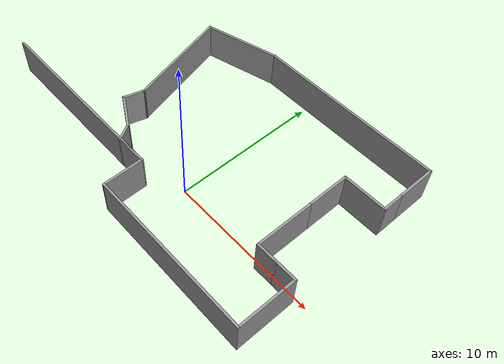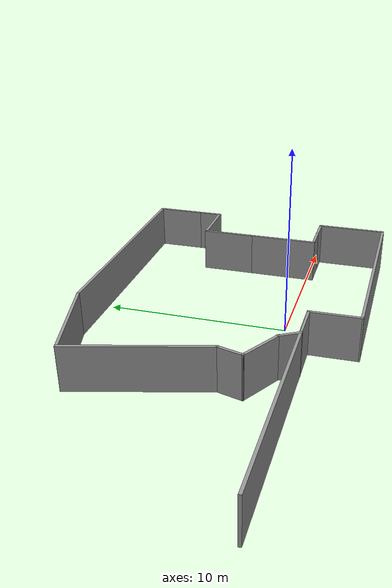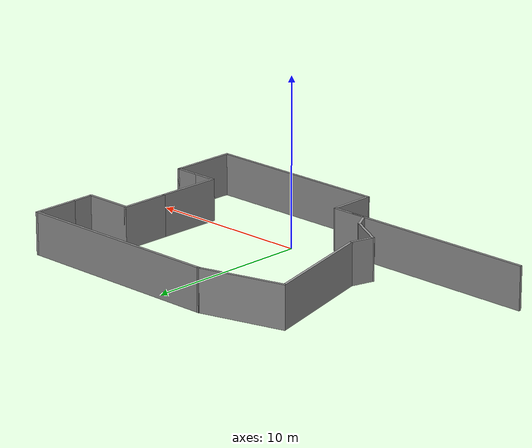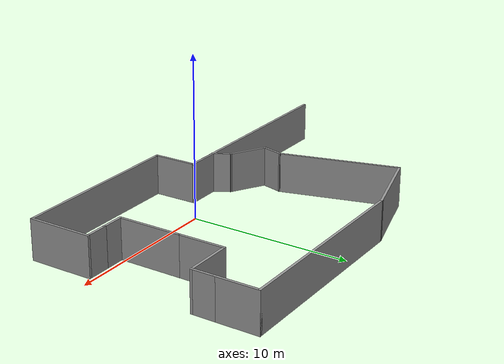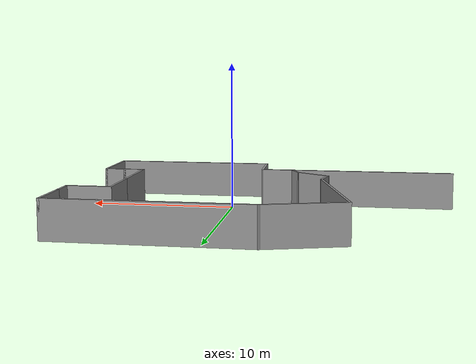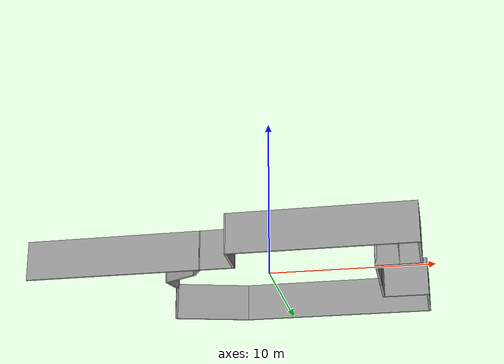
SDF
<?xml version='1.0'?>
<sdf version='1.7'>
  <model name='Untitled'>
    <pose>-2.84593 3.10905 0 0 -0 0</pose>
    <link name='Wall_1'>
      <collision name='Wall_1_Collision'>
        <geometry>
          <box>
            <size>2.25 0.15 2.5</size>
          </box>
        </geometry>
        <pose>0 0 1.25 0 -0 0</pose>
      </collision>
      <visual name='Wall_1_Visual'>
        <pose>0 0 1.25 0 -0 0</pose>
        <geometry>
          <box>
            <size>2.25 0.15 2.5</size>
          </box>
        </geometry>
        <material>
          <script>
            <uri>file://media/materials/scripts/gazebo.material</uri>
            <name>Gazebo/Grey</name>
          </script>
          <ambient>1 1 1 1</ambient>
        </material>
        <meta>
          <layer>0</layer>
        </meta>
      </visual>
      <pose>-0.144074 -4.60905 0 0 -0 3.14159</pose>
    </link>
    <link name='Wall_10'>
      <collision name='Wall_10_Collision'>
        <geometry>
          <box>
            <size>3 0.15 2.5</size>
          </box>
        </geometry>
        <pose>0 0 1.25 0 -0 0</pose>
      </collision>
      <visual name='Wall_10_Visual'>
        <pose>0 0 1.25 0 -0 0</pose>
        <geometry>
          <box>
            <size>3 0.15 2.5</size>
          </box>
        </geometry>
        <material>
          <script>
            <uri>file://media/materials/scripts/gazebo.material</uri>
            <name>Gazebo/Grey</name>
          </script>
          <ambient>1 1 1 1</ambient>
        </material>
        <meta>
          <layer>0</layer>
        </meta>
      </visual>
      <pose>10.7691 3.29211 0 0 -0 3.14159</pose>
    </link>
    <link name='Wall_11'>
      <collision name='Wall_11_Collision'>
        <geometry>
          <box>
            <size>3 0.15 2.5</size>
          </box>
        </geometry>
        <pose>0 0 1.25 0 -0 0</pose>
      </collision>
      <visual name='Wall_11_Visual'>
        <pose>0 0 1.25 0 -0 0</pose>
        <geometry>
          <box>
            <size>3 0.15 2.5</size>
          </box>
        </geometry>
        <material>
          <script>
            <uri>file://media/materials/scripts/gazebo.material</uri>
            <name>Gazebo/Grey</name>
          </script>
          <ambient>1 1 1 1</ambient>
        </material>
        <meta>
          <layer>0</layer>
        </meta>
      </visual>
      <pose>9.34407 1.86711 0 0 -0 -1.5708</pose>
    </link>
    <link name='Wall_12'>
      <collision name='Wall_12_Collision'>
        <geometry>
          <box>
            <size>4 0.15 2.5</size>
          </box>
        </geometry>
        <pose>0 0 1.25 0 -0 0</pose>
      </collision>
      <visual name='Wall_12_Visual'>
        <pose>0 0 1.25 0 -0 0</pose>
        <geometry>
          <box>
            <size>4 0.15 2.5</size>
          </box>
        </geometry>
        <material>
          <script>
            <uri>file://media/materials/scripts/gazebo.material</uri>
            <name>Gazebo/Grey</name>
          </script>
          <ambient>1 1 1 1</ambient>
        </material>
        <meta>
          <layer>0</layer>
        </meta>
      </visual>
      <pose>9.34407 -1.48289 0 0 -0 -1.5708</pose>
    </link>
    <link name='Wall_13'>
      <collision name='Wall_13_Collision'>
        <geometry>
          <box>
            <size>1.5 0.15 2.5</size>
          </box>
        </geometry>
        <pose>0 0 1.25 0 -0 0</pose>
      </collision>
      <visual name='Wall_13_Visual'>
        <pose>0 0 1.25 0 -0 0</pose>
        <geometry>
          <box>
            <size>1.5 0.15 2.5</size>
          </box>
        </geometry>
        <material>
          <script>
            <uri>file://media/materials/scripts/gazebo.material</uri>
            <name>Gazebo/Grey</name>
          </script>
          <ambient>1 1 1 1</ambient>
        </material>
        <meta>
          <layer>0</layer>
        </meta>
      </visual>
      <pose>10.0191 -3.40789 0 0 -0 0</pose>
    </link>
    <link name='Wall_14'>
      <collision name='Wall_14_Collision'>
        <geometry>
          <box>
            <size>1.5 0.15 2.5</size>
          </box>
        </geometry>
        <pose>0 0 1.25 0 -0 0</pose>
      </collision>
      <visual name='Wall_14_Visual'>
        <pose>0 0 1.25 0 -0 0</pose>
        <geometry>
          <box>
            <size>1.5 0.15 2.5</size>
          </box>
        </geometry>
        <material>
          <script>
            <uri>file://media/materials/scripts/gazebo.material</uri>
            <name>Gazebo/Grey</name>
          </script>
          <ambient>1 1 1 1</ambient>
        </material>
        <meta>
          <layer>0</layer>
        </meta>
      </visual>
      <pose>11.3691 -3.40789 0 0 -0 0</pose>
    </link>
    <link name='Wall_15'>
      <collision name='Wall_15_Collision'>
        <geometry>
          <box>
            <size>4 0.15 2.5</size>
          </box>
        </geometry>
        <pose>0 0 1.25 0 -0 0</pose>
      </collision>
      <visual name='Wall_15_Visual'>
        <pose>0 0 1.25 0 -0 0</pose>
        <geometry>
          <box>
            <size>4 0.15 2.5</size>
          </box>
        </geometry>
        <material>
          <script>
            <uri>file://media/materials/scripts/gazebo.material</uri>
            <name>Gazebo/Grey</name>
          </script>
          <ambient>1 1 1 1</ambient>
        </material>
        <meta>
          <layer>0</layer>
        </meta>
      </visual>
      <pose>12.0441 -5.33289 0 0 -0 -1.5708</pose>
    </link>
    <link name='Wall_16'>
      <collision name='Wall_16_Collision'>
        <geometry>
          <box>
            <size>11.25 0.15 2.5</size>
          </box>
        </geometry>
        <pose>0 0 1.25 0 -0 0</pose>
      </collision>
      <visual name='Wall_16_Visual'>
        <pose>0 0 1.25 0 -0 0</pose>
        <geometry>
          <box>
            <size>11.25 0.15 2.5</size>
          </box>
        </geometry>
        <material>
          <script>
            <uri>file://media/materials/scripts/gazebo.material</uri>
            <name>Gazebo/Grey</name>
          </script>
          <ambient>1 1 1 1</ambient>
        </material>
        <meta>
          <layer>0</layer>
        </meta>
      </visual>
      <pose>6.49407 -7.25789 0 0 -0 3.14159</pose>
    </link>
    <link name='Wall_17'>
      <collision name='Wall_17_Collision'>
        <geometry>
          <box>
            <size>2.79912 0.15 2.5</size>
          </box>
        </geometry>
        <pose>0 0 1.25 0 -0 0</pose>
      </collision>
      <visual name='Wall_17_Visual'>
        <pose>0 0 1.25 0 -0 0</pose>
        <geometry>
          <box>
            <size>2.79912 0.15 2.5</size>
          </box>
        </geometry>
        <material>
          <script>
            <uri>file://media/materials/scripts/gazebo.material</uri>
            <name>Gazebo/Grey</name>
          </script>
          <ambient>1 1 1 1</ambient>
        </material>
        <meta>
          <layer>0</layer>
        </meta>
      </visual>
      <pose>0.925 -5.93347 0 0 -0 1.5852</pose>
    </link>
    <link name='Wall_18'>
      <collision name='Wall_18_Collision'>
        <geometry>
          <box>
            <size>13.25 0.15 2.5</size>
          </box>
        </geometry>
        <pose>0 0 1.25 0 -0 0</pose>
      </collision>
      <visual name='Wall_18_Visual'>
        <pose>0 0 1.25 0 -0 0</pose>
        <geometry>
          <box>
            <size>13.25 0.15 2.5</size>
          </box>
        </geometry>
        <material>
          <script>
            <uri>file://media/materials/scripts/gazebo.material</uri>
            <name>Gazebo/Grey</name>
          </script>
          <ambient>0 0 0 1</ambient>
        </material>
        <meta>
          <layer>0</layer>
        </meta>
      </visual>
      <pose>-5.64407 -4.60905 0 0 -0 3.14159</pose>
    </link>
    <link name='Wall_2'>
      <collision name='Wall_2_Collision'>
        <geometry>
          <box>
            <size>1.25 0.15 2.5</size>
          </box>
        </geometry>
        <pose>0 0 1.25 0 -0 0</pose>
      </collision>
      <visual name='Wall_2_Visual'>
        <pose>0 0 1.25 0 -0 0</pose>
        <geometry>
          <box>
            <size>1.25 0.15 2.5</size>
          </box>
        </geometry>
        <material>
          <script>
            <uri>file://media/materials/scripts/gazebo.material</uri>
            <name>Gazebo/Grey</name>
          </script>
          <ambient>1 1 1 1</ambient>
        </material>
        <meta>
          <layer>0</layer>
        </meta>
      </visual>
      <pose>-1.46907 -4.13274 0 0 -0 2.0944</pose>
    </link>
    <link name='Wall_3'>
      <collision name='Wall_3_Collision'>
        <geometry>
          <box>
            <size>2.5 0.15 2.5</size>
          </box>
        </geometry>
        <pose>0 0 1.25 0 -0 0</pose>
      </collision>
      <visual name='Wall_3_Visual'>
        <pose>0 0 1.25 0 -0 0</pose>
        <geometry>
          <box>
            <size>2.5 0.15 2.5</size>
          </box>
        </geometry>
        <material>
          <script>
            <uri>file://media/materials/scripts/gazebo.material</uri>
            <name>Gazebo/Grey</name>
          </script>
          <ambient>1 1 1 1</ambient>
        </material>
        <meta>
          <layer>0</layer>
        </meta>
      </visual>
      <pose>-2.76165 -3.06892 0 0 -0 2.61799</pose>
    </link>
    <link name='Wall_4'>
      <collision name='Wall_4_Collision'>
        <geometry>
          <box>
            <size>1.5 0.15 2.5</size>
          </box>
        </geometry>
        <pose>0 0 1.25 0 -0 0</pose>
      </collision>
      <visual name='Wall_4_Visual'>
        <pose>0 0 1.25 0 -0 0</pose>
        <geometry>
          <box>
            <size>1.5 0.15 2.5</size>
          </box>
        </geometry>
        <material>
          <script>
            <uri>file://media/materials/scripts/gazebo.material</uri>
            <name>Gazebo/Grey</name>
          </script>
          <ambient>1 1 1 1</ambient>
        </material>
        <meta>
          <layer>0</layer>
        </meta>
      </visual>
      <pose>-3.60453 -1.82942 0 0 -0 1.309</pose>
    </link>
    <link name='Wall_5'>
      <collision name='Wall_5_Collision'>
        <geometry>
          <box>
            <size>7.5 0.15 2.5</size>
          </box>
        </geometry>
        <pose>0 0 1.25 0 -0 0</pose>
      </collision>
      <visual name='Wall_5_Visual'>
        <pose>0 0 1.25 0 -0 0</pose>
        <geometry>
          <box>
            <size>7.5 0.15 2.5</size>
          </box>
        </geometry>
        <material>
          <script>
            <uri>file://media/materials/scripts/gazebo.material</uri>
            <name>Gazebo/Grey</name>
          </script>
          <ambient>1 1 1 1</ambient>
        </material>
        <meta>
          <layer>0</layer>
        </meta>
      </visual>
      <pose>-4.38099 2.37235 0 0 -0 1.8326</pose>
    </link>
    <link name='Wall_6'>
      <collision name='Wall_6_Collision'>
        <geometry>
          <box>
            <size>5.25 0.15 2.5</size>
          </box>
        </geometry>
        <pose>0 0 1.25 0 -0 0</pose>
      </collision>
      <visual name='Wall_6_Visual'>
        <pose>0 0 1.25 0 -0 0</pose>
        <geometry>
          <box>
            <size>5.25 0.15 2.5</size>
          </box>
        </geometry>
        <material>
          <script>
            <uri>file://media/materials/scripts/gazebo.material</uri>
            <name>Gazebo/Grey</name>
          </script>
          <ambient>1 1 1 1</ambient>
        </material>
        <meta>
          <layer>0</layer>
        </meta>
      </visual>
      <pose>-2.86904 6.58212 0 0 -0 0.261799</pose>
    </link>
    <link name='Wall_7'>
      <collision name='Wall_7_Collision'>
        <geometry>
          <box>
            <size>12.75 0.15 2.5</size>
          </box>
        </geometry>
        <pose>0 0 1.25 0 -0 0</pose>
      </collision>
      <visual name='Wall_7_Visual'>
        <pose>0 0 1.25 0 -0 0</pose>
        <geometry>
          <box>
            <size>12.75 0.15 2.5</size>
          </box>
        </geometry>
        <material>
          <script>
            <uri>file://media/materials/scripts/gazebo.material</uri>
            <name>Gazebo/Grey</name>
          </script>
          <ambient>1 1 1 1</ambient>
        </material>
        <meta>
          <layer>0</layer>
        </meta>
      </visual>
      <pose>5.89407 7.24211 0 0 -0 0</pose>
    </link>
    <link name='Wall_8'>
      <collision name='Wall_8_Collision'>
        <geometry>
          <box>
            <size>2.75 0.15 2.5</size>
          </box>
        </geometry>
        <pose>0 0 1.25 0 -0 0</pose>
      </collision>
      <visual name='Wall_8_Visual'>
        <pose>0 0 1.25 0 -0 0</pose>
        <geometry>
          <box>
            <size>2.75 0.15 2.5</size>
          </box>
        </geometry>
        <material>
          <script>
            <uri>file://media/materials/scripts/gazebo.material</uri>
            <name>Gazebo/Grey</name>
          </script>
          <ambient>1 1 1 1</ambient>
        </material>
        <meta>
          <layer>0</layer>
        </meta>
      </visual>
      <pose>12.1941 5.94211 0 0 -0 -1.5708</pose>
    </link>
    <link name='Wall_9'>
      <collision name='Wall_9_Collision'>
        <geometry>
          <box>
            <size>1.5 0.15 2.5</size>
          </box>
        </geometry>
        <pose>0 0 1.25 0 -0 0</pose>
      </collision>
      <visual name='Wall_9_Visual'>
        <pose>0 0 1.25 0 -0 0</pose>
        <geometry>
          <box>
            <size>1.5 0.15 2.5</size>
          </box>
        </geometry>
        <material>
          <script>
            <uri>file://media/materials/scripts/gazebo.material</uri>
            <name>Gazebo/Grey</name>
          </script>
          <ambient>1 1 1 1</ambient>
        </material>
        <meta>
          <layer>0</layer>
        </meta>
      </visual>
      <pose>12.1941 3.96711 0 0 -0 -1.5708</pose>
    </link>
    <static>1</static>
  </model>
</sdf>
